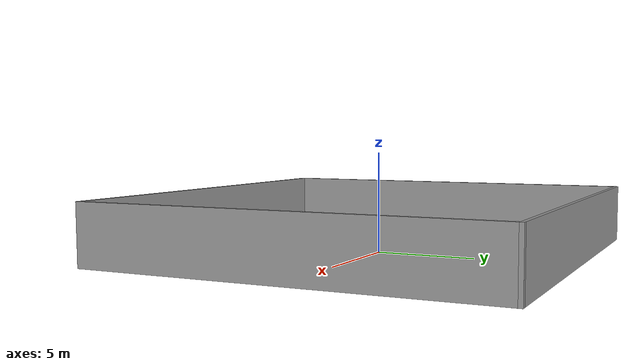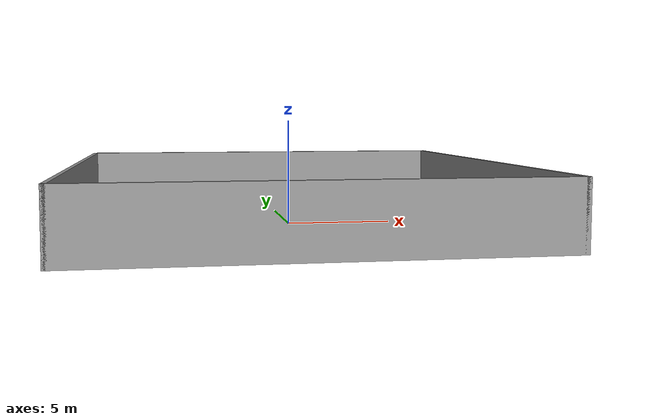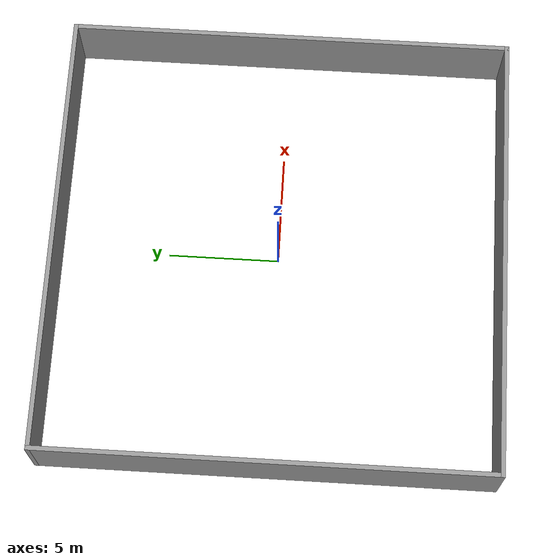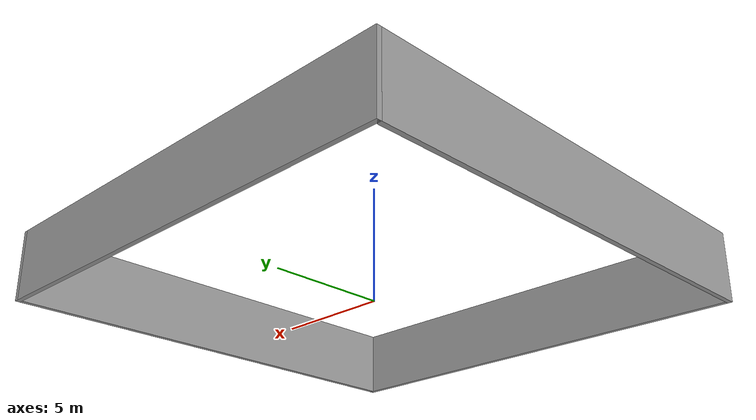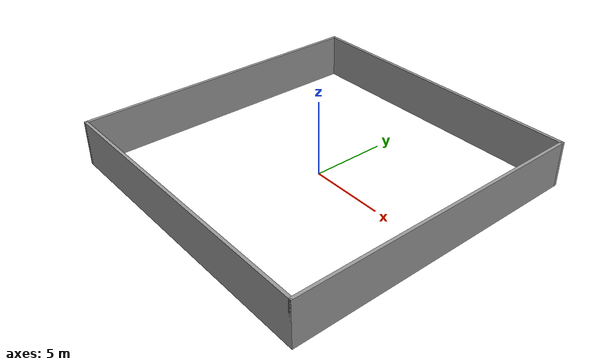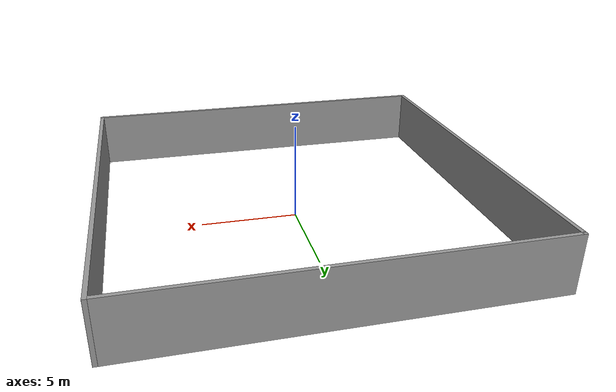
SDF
<?xml version='1.0'?>
<sdf version='1.7'>
  <model name='Fence20'>
    <pose>0 0 0 0 -0 0</pose>
    <link name='Wall_12'>
      <collision name='Wall_12_Collision'>
        <geometry>
          <box>
            <size>20.2 0.2 3</size>
          </box>
        </geometry>
        <pose>0 0 1.5 0 -0 0</pose>
      </collision>
      <visual name='Wall_12_Visual'>
        <pose>0 0 1.5 0 -0 0</pose>
        <geometry>
          <box>
            <size>20.2 0.2 3</size>
          </box>
        </geometry>
        <material>
          <script>
            <uri>file://media/materials/scripts/gazebo.material</uri>
            <name>Gazebo/Grey</name>
          </script>
          <ambient>1 1 1 1</ambient>
        </material>
        <meta>
          <layer>0</layer>
        </meta>
      </visual>
      <pose>-10 0 0 0 -0 -1.5708</pose>
    </link>
    <link name='Wall_13'>
      <collision name='Wall_13_Collision'>
        <geometry>
          <box>
            <size>20.2 0.2 3</size>
          </box>
        </geometry>
        <pose>0 0 1.5 0 -0 0</pose>
      </collision>
      <visual name='Wall_13_Visual'>
        <pose>0 0 1.5 0 -0 0</pose>
        <geometry>
          <box>
            <size>20.2 0.2 3</size>
          </box>
        </geometry>
        <material>
          <script>
            <uri>file://media/materials/scripts/gazebo.material</uri>
            <name>Gazebo/Grey</name>
          </script>
          <ambient>1 1 1 1</ambient>
        </material>
        <meta>
          <layer>0</layer>
        </meta>
      </visual>
      <pose>0 -10 0 0 -0 0</pose>
    </link>
    <link name='Wall_14'>
      <collision name='Wall_14_Collision'>
        <geometry>
          <box>
            <size>20.2 0.2 3</size>
          </box>
        </geometry>
        <pose>0 0 1.5 0 -0 0</pose>
      </collision>
      <visual name='Wall_14_Visual'>
        <pose>0 0 1.5 0 -0 0</pose>
        <geometry>
          <box>
            <size>20.2 0.2 3</size>
          </box>
        </geometry>
        <material>
          <script>
            <uri>file://media/materials/scripts/gazebo.material</uri>
            <name>Gazebo/Grey</name>
          </script>
          <ambient>1 1 1 1</ambient>
        </material>
        <meta>
          <layer>0</layer>
        </meta>
      </visual>
      <pose>10 0 0 0 -0 1.5708</pose>
    </link>
    <link name='Wall_15'>
      <collision name='Wall_15_Collision'>
        <geometry>
          <box>
            <size>20.2 0.2 3</size>
          </box>
        </geometry>
        <pose>0 0 1.5 0 -0 0</pose>
      </collision>
      <visual name='Wall_15_Visual'>
        <pose>0 0 1.5 0 -0 0</pose>
        <geometry>
          <box>
            <size>20.2 0.2 3</size>
          </box>
        </geometry>
        <material>
          <script>
            <uri>file://media/materials/scripts/gazebo.material</uri>
            <name>Gazebo/Grey</name>
          </script>
          <ambient>1 1 1 1</ambient>
        </material>
        <meta>
          <layer>0</layer>
        </meta>
      </visual>
      <pose>0 10 0 0 -0 3.14159</pose>
    </link>
    <static>1</static>
  </model>
</sdf>
